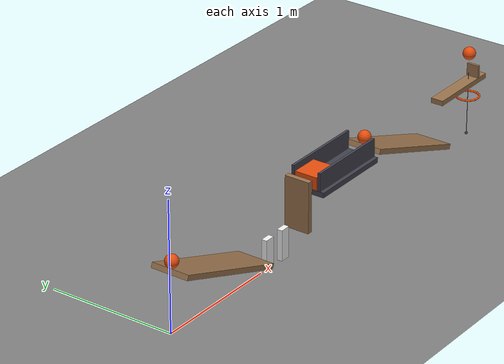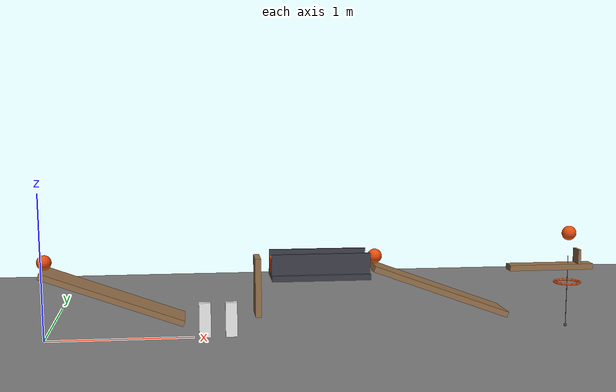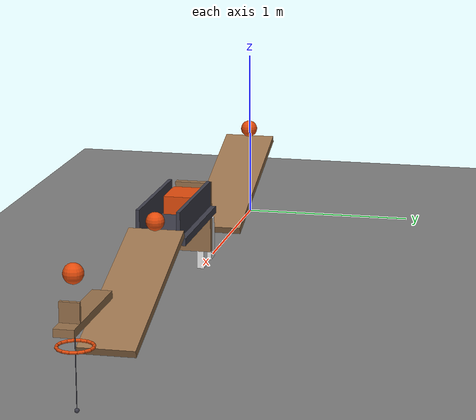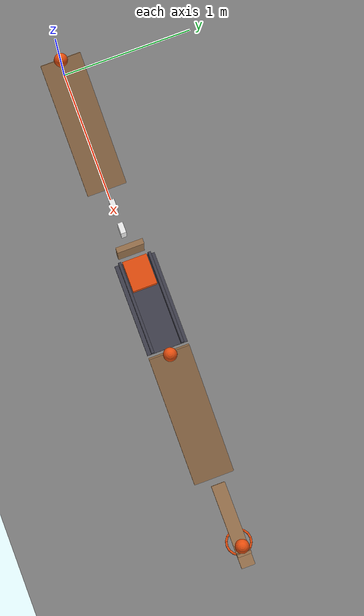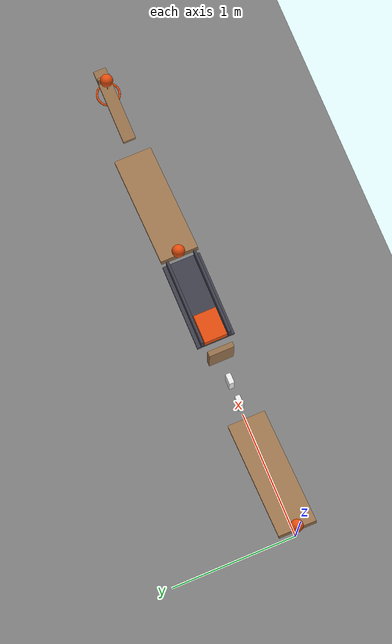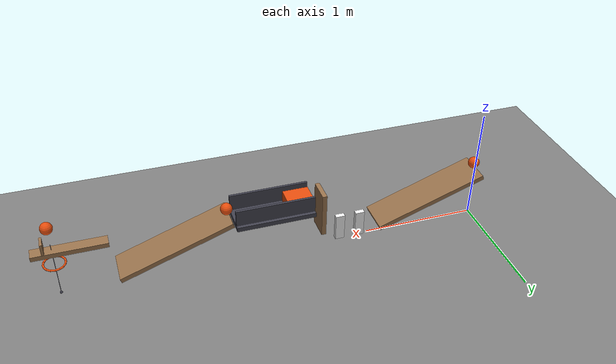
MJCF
<mujoco model="gravity_chain_draft">
  <compiler angle="radian"/>
  <option timestep="0.002"/>
  <worldbody>
    <geom name="floor" type="plane" size="10 10 0.1" friction="0.7 0 0"/>
    <body name="ramp1">
      <geom name="ramp1" type="box" pos="0.469846 0 0.302216" size="0.5 0.15 0.02" euler="0 0.349066 0" friction="0.7 0 0" solref="0.01 1" rgba="0.6 0.45 0.3 1"/>
    </body>
    <body name="ball1" pos="0.0239414 0 0.539005">
      <freejoint/>
      <geom name="ball1" type="sphere" pos="0 0 0" size="0.05" mass="0.2" condim="6" friction="0.7 0 0" solref="0.01 1" rgba="0.9 0.3 0.05 1"/>
    </body>
    <body name="domino1" pos="1.07969 0 0.12">
      <freejoint/>
      <geom name="domino1" type="box" pos="0 0 0" size="0.04 0.02 0.12" mass="0.25" friction="0.7 0 0" solref="0.01 1" rgba="0.95 0.95 0.95 1"/>
    </body>
    <body name="domino2" pos="1.25969 0 0.12">
      <freejoint/>
      <geom name="domino2" type="box" pos="0 0 0" size="0.04 0.02 0.12" mass="0.25" friction="0.7 0 0" solref="0.01 1" rgba="0.95 0.95 0.95 1"/>
    </body>
    <body name="flap1" pos="1.43969 0 0.55">
      <joint name="flap_hinge" type="hinge" pos="0 0 0" axis="0 1 0" limited="true" range="-1.13446 0" damping="0.04"/>
      <geom name="flap1" type="box" pos="0 0 -0.2" size="0.02 0.1 0.2" mass="0.3" friction="0.7 0 0" solref="0.01 1" rgba="0.6 0.45 0.3 1"/>
    </body>
    <body name="cart track">
      <geom name="cart track" type="box" pos="1.86469 0 0.42" size="0.335 0.15 0.02" friction="0.7 0 0" solref="0.01 1" rgba="0.25 0.25 0.3 1"/>
    </body>
    <body name="cart left guide">
      <geom name="cart left guide" type="box" pos="1.86469 0.11 0.51" size="0.335 0.01 0.07" friction="0.7 0 0" solref="0.01 1" rgba="0.25 0.25 0.3 1"/>
    </body>
    <body name="cart right guide">
      <geom name="cart right guide" type="box" pos="1.86469 -0.11 0.51" size="0.335 0.01 0.07" friction="0.7 0 0" solref="0.01 1" rgba="0.25 0.25 0.3 1"/>
    </body>
    <body name="cart1" pos="1.63969 0 0.49">
      <freejoint/>
      <geom name="cart1" type="box" pos="0 0 0" size="0.11 0.09 0.05" mass="0.5" friction="0.7 0 0" solref="0.01 1" rgba="0.9 0.3 0.05 1"/>
    </body>
    <body name="ramp2">
      <geom name="ramp2" type="box" pos="2.6956 0 0.302216" size="0.5 0.15 0.02" euler="0 0.349066 0" friction="0.7 0 0" solref="0.01 1" rgba="0.6 0.45 0.3 1"/>
    </body>
    <body name="ball2" pos="2.24969 0 0.539005">
      <freejoint/>
      <geom name="ball2" type="sphere" pos="0 0 0" size="0.05" mass="0.2" condim="6" friction="0.7 0 0" solref="0.01 1" rgba="0.9 0.3 0.05 1"/>
    </body>
    <body name="lever1" pos="3.50442 0 0.44">
      <joint name="lever_hinge" type="hinge" pos="0 0 0" axis="0 1 0" limited="true" range="-1.5708 -0.785398" damping="0.04"/>
      <geom name="lever1" type="box" pos="0 0 0" size="0.3 0.05 0.02" mass="0.5" friction="0.7 0 0" solref="0.01 1" rgba="0.6 0.45 0.3 1"/>
      <geom name="lever ball retainer" type="box" pos="0.2 0 0.07" size="0.01 0.05 0.05" mass="0.001" friction="0.7 0 0" solref="0.01 1" rgba="0.6 0.45 0.3 1"/>
    </body>
    <body name="ball3" pos="3.63877 0 0.673345">
      <freejoint/>
      <geom name="ball3" type="sphere" pos="0 0 0" size="0.05" mass="0.2" condim="6" friction="0.7 0 0" solref="0.01 1" rgba="0.9 0.3 0.05 1"/>
    </body>
    <body name="ring1">
      <geom name="ring1_00" type="capsule" size="0.008" fromto="3.72677 0 0.323345 3.72007 0.0336761 0.323345" friction="0.7 0 0" solref="0.01 1" rgba="0.9 0.3 0.05 1"/>
      <geom name="ring1_01" type="capsule" size="0.008" fromto="3.72007 0.0336761 0.323345 3.70099 0.0622254 0.323345" friction="0.7 0 0" solref="0.01 1" rgba="0.9 0.3 0.05 1"/>
      <geom name="ring1_02" type="capsule" size="0.008" fromto="3.70099 0.0622254 0.323345 3.67244 0.0813014 0.323345" friction="0.7 0 0" solref="0.01 1" rgba="0.9 0.3 0.05 1"/>
      <geom name="ring1_03" type="capsule" size="0.008" fromto="3.67244 0.0813014 0.323345 3.63877 0.088 0.323345" friction="0.7 0 0" solref="0.01 1" rgba="0.9 0.3 0.05 1"/>
      <geom name="ring1_04" type="capsule" size="0.008" fromto="3.63877 0.088 0.323345 3.60509 0.0813014 0.323345" friction="0.7 0 0" solref="0.01 1" rgba="0.9 0.3 0.05 1"/>
      <geom name="ring1_05" type="capsule" size="0.008" fromto="3.60509 0.0813014 0.323345 3.57654 0.0622254 0.323345" friction="0.7 0 0" solref="0.01 1" rgba="0.9 0.3 0.05 1"/>
      <geom name="ring1_06" type="capsule" size="0.008" fromto="3.57654 0.0622254 0.323345 3.55747 0.0336761 0.323345" friction="0.7 0 0" solref="0.01 1" rgba="0.9 0.3 0.05 1"/>
      <geom name="ring1_07" type="capsule" size="0.008" fromto="3.55747 0.0336761 0.323345 3.55077 1.07769e-17 0.323345" friction="0.7 0 0" solref="0.01 1" rgba="0.9 0.3 0.05 1"/>
      <geom name="ring1_08" type="capsule" size="0.008" fromto="3.55077 1.07769e-17 0.323345 3.55747 -0.0336761 0.323345" friction="0.7 0 0" solref="0.01 1" rgba="0.9 0.3 0.05 1"/>
      <geom name="ring1_09" type="capsule" size="0.008" fromto="3.55747 -0.0336761 0.323345 3.57654 -0.0622254 0.323345" friction="0.7 0 0" solref="0.01 1" rgba="0.9 0.3 0.05 1"/>
      <geom name="ring1_10" type="capsule" size="0.008" fromto="3.57654 -0.0622254 0.323345 3.60509 -0.0813014 0.323345" friction="0.7 0 0" solref="0.01 1" rgba="0.9 0.3 0.05 1"/>
      <geom name="ring1_11" type="capsule" size="0.008" fromto="3.60509 -0.0813014 0.323345 3.63877 -0.088 0.323345" friction="0.7 0 0" solref="0.01 1" rgba="0.9 0.3 0.05 1"/>
      <geom name="ring1_12" type="capsule" size="0.008" fromto="3.63877 -0.088 0.323345 3.67244 -0.0813014 0.323345" friction="0.7 0 0" solref="0.01 1" rgba="0.9 0.3 0.05 1"/>
      <geom name="ring1_13" type="capsule" size="0.008" fromto="3.67244 -0.0813014 0.323345 3.70099 -0.0622254 0.323345" friction="0.7 0 0" solref="0.01 1" rgba="0.9 0.3 0.05 1"/>
      <geom name="ring1_14" type="capsule" size="0.008" fromto="3.70099 -0.0622254 0.323345 3.72007 -0.0336761 0.323345" friction="0.7 0 0" solref="0.01 1" rgba="0.9 0.3 0.05 1"/>
      <geom name="ring1_15" type="capsule" size="0.008" fromto="3.72007 -0.0336761 0.323345 3.72677 -2.15538e-17 0.323345" friction="0.7 0 0" solref="0.01 1" rgba="0.9 0.3 0.05 1"/>
    </body>
    <body name="pendulum1" pos="3.63877 0 0.511673">
      <joint name="pendulum_hinge" type="hinge" pos="0 0 0" axis="0 1 0" limited="true" range="-1.5708 1.5708" damping="0.04"/>
      <geom name="pendulum1_bob" type="sphere" pos="0 0 -0.5" size="0.0116726" mass="0.34" friction="0.7 0 0" solref="0.01 1" rgba="0.25 0.25 0.3 1"/>
      <geom name="pendulum1_rod" type="capsule" size="0.002" fromto="0 0 0 0 0 -0.488327" mass="0.01" friction="0.7 0 0" solref="0.01 1" rgba="0.25 0.25 0.3 1"/>
    </body>
  </worldbody>
  <keyframe>
    <key name="start" qpos="0.0239414 0 0.539005 1 0 0 0 1.07969 0 0.12 1 0 0 0 1.25969 0 0.12 1 0 0 0 0 1.63969 0 0.49 1 0 0 0 2.24969 0 0.539005 1 0 0 0 -0.785398 3.63877 0 0.673345 1 0 0 0 0" qvel="0 0 0 0 0 0 0 0 0 0 0 0 0 0 0 0 0 0 0 0 0 0 0 0 0 0 0 0 0 0 0 0 0 0 0 0 0 0 0"/>
  </keyframe>
</mujoco>
